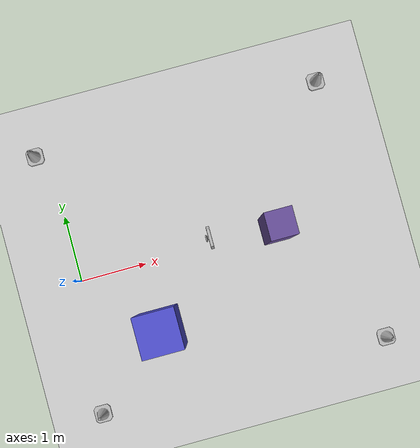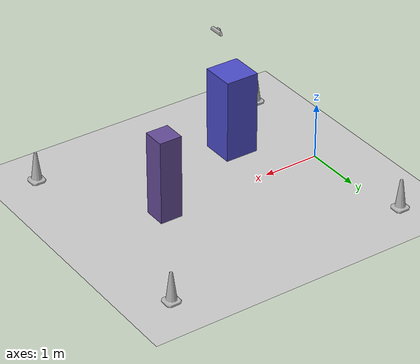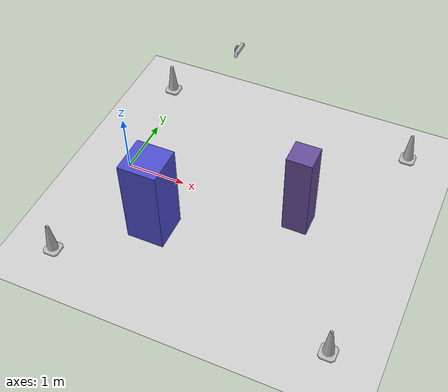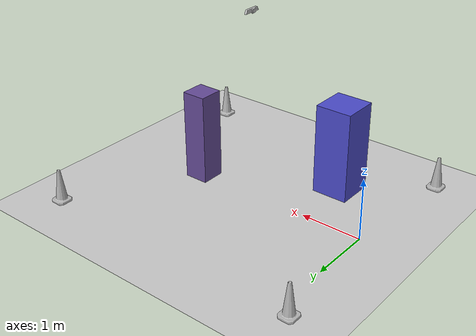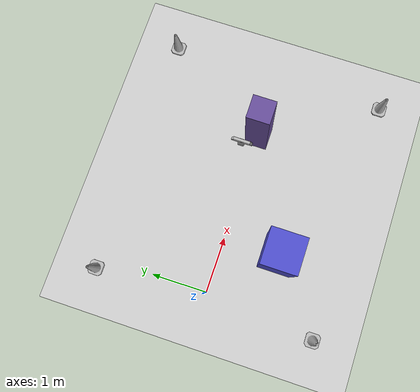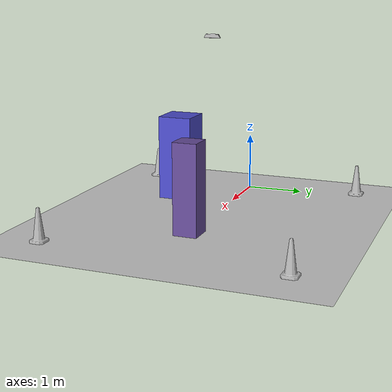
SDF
<sdf version="1.6">
 <world name="default">
  <model name="ground_plane">
   <static>1</static>
   <link name="link">
    <collision name="collision">
     <geometry><plane><normal>0 0 1</normal><size>100 100</size></plane></geometry>
     <surface><friction><ode><mu>100</mu><mu2>50</mu2></ode></friction></surface>
    </collision>
    <visual name="visual">
     <cast_shadows>0</cast_shadows>
     <geometry><plane><normal>0 0 1</normal><size>100 100</size></plane></geometry>
     <material>
      <script><uri>file://media/materials/scripts/gazebo.material</uri><name>Gazebo/Grey</name></script>
     </material>
    </visual>
   </link>
  </model>
  <light name="sun" type="directional">
   <pose>0 0 10 0 -0 0</pose>
   <diffuse>0.8 0.8 0.8 1</diffuse>
   <specular>0.2 0.2 0.2 1</specular>
   <attenuation>
    <range>1000</range>
    <constant>0.9</constant>
    <linear>0.01</linear>
    <quadratic>0.001</quadratic>
   </attenuation>
   <direction>-0.5 0.1 -0.9</direction>
  </light>
  <plugin name="ros_interface_plugin" filename="librotors_gazebo_ros_interface_plugin.so"/>
  <spherical_coordinates>
   <surface_model>EARTH_WGS84</surface_model>
   <latitude_deg>47.3667</latitude_deg>
   <longitude_deg>8.55</longitude_deg>
   <elevation>500</elevation>
   <heading_deg>0</heading_deg>
  </spherical_coordinates>
  <model name="Construction Cone">
   <link name="link">
    <collision name="collision">
     <geometry>
      <mesh><scale>5 5 5</scale><uri>model://construction_cone/meshes/construction_cone.dae</uri></mesh>
     </geometry>
    </collision>
    <visual name="visual">
     <geometry>
      <mesh><scale>5 5 5</scale><uri>model://construction_cone/meshes/construction_cone.dae</uri></mesh>
     </geometry>
    </visual>
    <inertial>
     <inertia><ixx>1</ixx><ixy>0</ixy><ixz>0</ixz><iyy>1</iyy><iyz>0</iyz><izz>1</izz></inertia>
     <mass>1</mass>
    </inertial>
   </link>
   <pose>-0.2 2 -0.000949 -2e-05 -5.2e-05 0</pose>
  </model>
  <model name="Construction Cone_0">
   <link name="link">
    <collision name="collision">
     <geometry>
      <mesh><scale>5 5 5</scale><uri>model://construction_cone/meshes/construction_cone.dae</uri></mesh>
     </geometry>
    </collision>
    <visual name="visual">
     <geometry>
      <mesh><scale>5 5 5</scale><uri>model://construction_cone/meshes/construction_cone.dae</uri></mesh>
     </geometry>
    </visual>
    <inertial>
     <inertia><ixx>1</ixx><ixy>0</ixy><ixz>0</ixz><iyy>1</iyy><iyz>0</iyz><izz>1</izz></inertia>
     <mass>1</mass>
    </inertial>
   </link>
   <pose>4.2 2 -0.000949 -2e-05 -5.2e-05 0</pose>
  </model>
  <physics name="default_physics" default="0" type="ode">
   <ode>
    <solver>
     <type>quick</type>
     <iters>1000</iters>
     <sor>1.3</sor>
     <use_dynamic_moi_rescaling>0</use_dynamic_moi_rescaling>
    </solver>
    <constraints>
     <cfm>0</cfm>
     <erp>0.2</erp>
     <contact_max_correcting_vel>100</contact_max_correcting_vel>
     <contact_surface_layer>0.001</contact_surface_layer>
    </constraints>
   </ode>
   <max_step_size>0.01</max_step_size>
   <real_time_factor>1</real_time_factor>
   <real_time_update_rate>100</real_time_update_rate>
  </physics>
  <scene><shadows>0</shadows><ambient>0.4 0.4 0.4 1</ambient><background>0.7 0.7 0.7 1</background></scene>
  <gravity>0 0 -9.8</gravity>
  <magnetic_field>6e-06 2.3e-05 -4.2e-05</magnetic_field>
  <atmosphere type="adiabatic"/>
  <model name="Construction Cone_clone">
   <link name="link">
    <collision name="collision">
     <geometry>
      <mesh><scale>5 5 5</scale><uri>model://construction_cone/meshes/construction_cone.dae</uri></mesh>
     </geometry>
    </collision>
    <visual name="visual">
     <geometry>
      <mesh><scale>5 5 5</scale><uri>model://construction_cone/meshes/construction_cone.dae</uri></mesh>
     </geometry>
    </visual>
    <inertial>
     <inertia><ixx>1</ixx><ixy>0</ixy><ixz>0</ixz><iyy>1</iyy><iyz>0</iyz><izz>1</izz></inertia>
     <mass>1</mass>
    </inertial>
   </link>
   <pose>-0.2 -2 -0.000949 -2e-05 -5.2e-05 0</pose>
  </model>
  <model name="Construction Cone_clone_0">
   <link name="link">
    <collision name="collision">
     <geometry>
      <mesh><scale>5 5 5</scale><uri>model://construction_cone/meshes/construction_cone.dae</uri></mesh>
     </geometry>
    </collision>
    <visual name="visual">
     <geometry>
      <mesh><scale>5 5 5</scale><uri>model://construction_cone/meshes/construction_cone.dae</uri></mesh>
     </geometry>
    </visual>
    <inertial>
     <inertia><ixx>1</ixx><ixy>0</ixy><ixz>0</ixz><iyy>1</iyy><iyz>0</iyz><izz>1</izz></inertia>
     <mass>1</mass>
    </inertial>
   </link>
   <pose>4.2 -2 -0.000949 -2e-05 -5.2e-05 0</pose>
  </model>
  <model name="unit_box">
   <static>1</static>
   <link name="link">
    <inertial>
     <mass>1</mass>
     <inertia>
      <ixx>0.166667</ixx>
      <ixy>0</ixy>
      <ixz>0</ixz>
      <iyy>0.166667</iyy>
      <iyz>0</iyz>
      <izz>0.166667</izz>
     </inertia>
    </inertial>
    <visual name="visual">
     <geometry><box><size>0.6 0.6 1.5</size></box></geometry>
     <material>
      <script><name>Gazebo/Grey</name><uri>file://media/materials/scripts/gazebo.material</uri></script>
      <shader type="pixel"><normal_map>__default__</normal_map></shader>
      <ambient>0.3 0.3 0.8 1</ambient>
      <diffuse>0.7 0.7 0.7 1</diffuse>
      <specular>0.01 0.01 0.01 1</specular>
      <emissive>0 0 0 1</emissive>
     </material>
    </visual>
    <collision name="collision">
     <geometry><box><size>0.6 0.6 1.5</size></box></geometry>
     <surface>
      <friction>
       <ode><mu>1</mu><mu2>1</mu2><fdir1>0 0 0</fdir1><slip1>0</slip1><slip2>0</slip2></ode>
       <torsional>
        <coefficient>1</coefficient>
        <patch_radius>0</patch_radius>
        <surface_radius>0</surface_radius>
        <use_patch_radius>1</use_patch_radius>
        <ode><slip>0</slip></ode>
       </torsional>
      </friction>
      <bounce><restitution_coefficient>0</restitution_coefficient><threshold>1e+06</threshold></bounce>
      <contact>
       <collide_without_contact>0</collide_without_contact>
       <collide_without_contact_bitmask>1</collide_without_contact_bitmask>
       <collide_bitmask>1</collide_bitmask>
       <ode>
        <soft_cfm>0</soft_cfm>
        <soft_erp>0.2</soft_erp>
        <kp>1e+13</kp>
        <kd>1</kd>
        <max_vel>0.01</max_vel>
        <min_depth>0</min_depth>
       </ode>
       <bullet>
        <split_impulse>1</split_impulse>
        <split_impulse_penetration_threshold>-0.01</split_impulse_penetration_threshold>
        <soft_cfm>0</soft_cfm>
        <soft_erp>0.2</soft_erp>
        <kp>1e+13</kp>
        <kd>1</kd>
       </bullet>
      </contact>
     </surface>
    </collision>
   </link>
   <static>0</static>
   <pose>1 -1 0.75 0 -0 0</pose>
  </model>
  <model name="unit_box_clone">
   <static>1</static>
   <link name="link">
    <inertial>
     <mass>1</mass>
     <inertia>
      <ixx>0.166667</ixx>
      <ixy>0</ixy>
      <ixz>0</ixz>
      <iyy>0.166667</iyy>
      <iyz>0</iyz>
      <izz>0.166667</izz>
     </inertia>
    </inertial>
    <visual name="visual">
     <geometry><box><size>0.4 0.4 1.5</size></box></geometry>
     <material>
      <script><name>Gazebo/Grey</name><uri>file://media/materials/scripts/gazebo.material</uri></script>
      <shader type="pixel"><normal_map>__default__</normal_map></shader>
      <ambient>0.4 0.3 0.6 1</ambient>
      <diffuse>0.7 0.7 0.7 1</diffuse>
      <specular>0.01 0.01 0.01 1</specular>
      <emissive>0 0 0 1</emissive>
     </material>
    </visual>
    <collision name="collision">
     <geometry><box><size>0.4 0.4 1.5</size></box></geometry>
     <surface>
      <friction>
       <ode><mu>1</mu><mu2>1</mu2><fdir1>0 0 0</fdir1><slip1>0</slip1><slip2>0</slip2></ode>
       <torsional>
        <coefficient>1</coefficient>
        <patch_radius>0</patch_radius>
        <surface_radius>0</surface_radius>
        <use_patch_radius>1</use_patch_radius>
        <ode><slip>0</slip></ode>
       </torsional>
      </friction>
      <bounce><restitution_coefficient>0</restitution_coefficient><threshold>1e+06</threshold></bounce>
      <contact>
       <collide_without_contact>0</collide_without_contact>
       <collide_without_contact_bitmask>1</collide_without_contact_bitmask>
       <collide_bitmask>1</collide_bitmask>
       <ode>
        <soft_cfm>0</soft_cfm>
        <soft_erp>0.2</soft_erp>
        <kp>1e+13</kp>
        <kd>1</kd>
        <max_vel>0.01</max_vel>
        <min_depth>0</min_depth>
       </ode>
       <bullet>
        <split_impulse>1</split_impulse>
        <split_impulse_penetration_threshold>-0.01</split_impulse_penetration_threshold>
        <soft_cfm>0</soft_cfm>
        <soft_erp>0.2</soft_erp>
        <kp>1e+13</kp>
        <kd>1</kd>
       </bullet>
      </contact>
     </surface>
    </collision>
   </link>
   <static>0</static>
   <pose>3 0 0.75 0 -0 0</pose>
  </model>
  <model name="kinect_ros_3">
   <pose>2 0 3.0 0 1.57 0</pose>
   <link name="link">
    <inertial><mass>0.1</mass></inertial>
    <collision name="collision"><geometry><box><size>0.073 0.276 0.072</size></box></geometry></collision>
    <visual name="visual"><geometry><mesh><uri>model://kinect/meshes/kinect.dae</uri></mesh></geometry></visual>
    <sensor name="camera" type="depth">
     <update_rate>20</update_rate>
     <camera name="__default__">
      <horizontal_fov>1.5708</horizontal_fov>
      <image><width>80</width><height>80</height><format>R8G8B8</format></image>
      <clip><near>0.01</near><far>10</far></clip>
     </camera>
     <plugin name="camera_plugin" filename="libgazebo_ros_openni_kinect.so">
      <baseline>0.2</baseline>
      <alwaysOn>1</alwaysOn>
      <updateRate>0.0</updateRate>
      <cameraName>camera_ir_top</cameraName>
      <imageTopicName>camera/color/image_raw</imageTopicName>
      <cameraInfoTopicName>camera/color/camera_info</cameraInfoTopicName>
      <depthImageTopicName>camera/depth/image_raw</depthImageTopicName>
      <depthImageCameraInfoTopicName>camera/depth/camera_info</depthImageCameraInfoTopicName>
      <pointCloudTopicName>camera/depth/points</pointCloudTopicName>
      <frameName>camera_link</frameName>
      <pointCloudCutoff>0.1</pointCloudCutoff>
      <pointCloudCutoffMax>5.0</pointCloudCutoffMax>
      <distortionK1>0</distortionK1>
      <distortionK2>0</distortionK2>
      <distortionK3>0</distortionK3>
      <distortionT1>0</distortionT1>
      <distortionT2>0</distortionT2>
      <CxPrime>0</CxPrime>
      <Cx>0</Cx>
      <Cy>0</Cy>
      <focalLength>0</focalLength>
      <hackBaseline>0</hackBaseline>
     </plugin>
    </sensor>
   </link>
   <static>1</static>
  </model>
 </world>
</sdf>
